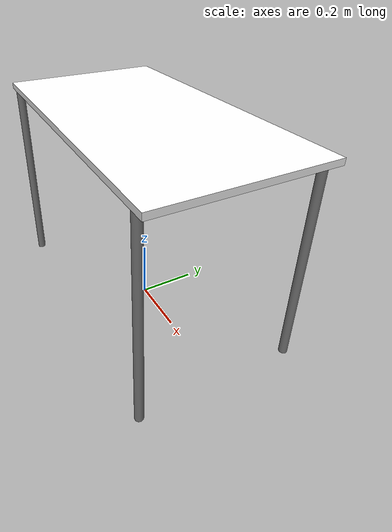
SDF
<sdf version="1.8">
    <model name="Table">
        <link name="link">
            <!-- Table Top Surface -->
            <collision name="surface">
                <pose>0 0 0.7 0 0 0</pose>
                <geometry>
                    <box>
                        <size>1.05 0.56 0.021</size>
                    </box>
                </geometry>
                <surface>
                    <friction>
                        <ode>
                            <mu>0.6</mu>
                            <mu2>0.6</mu2>
                        </ode>
                    </friction>
                </surface>
            </collision>
            <visual name="visual1">
                <pose>0 0 0.7 0 0 0</pose>
                <geometry>
                    <box>
                        <size>1.05 0.56 0.021</size>
                    </box>
                </geometry>
                <material>
                    <diffuse>1.0 1.0 1.0 1.0</diffuse>
                    <pbr>
                        <metal>
                            <albedo_map>https://fuel.gazebosim.org/1.0/openrobotics/models/table/4/files/Table_Diffuse.jpg</albedo_map>
                        </metal>
                    </pbr>
                </material>
            </visual>

            <!-- Front Left Leg -->
            <collision name="front_left_leg">
                <pose>0.476 0.266 0.35 0 0 0</pose>
                <geometry>
                    <cylinder>
                        <radius>0.014</radius>
                        <length>0.7</length>
                    </cylinder>
                </geometry>
            </collision>
            <visual name="front_left_leg">
                <pose>0.476 0.266 0.35 0 0 0</pose>
                <geometry>
                    <cylinder>
                        <radius>0.014</radius>
                        <length>0.7</length>
                    </cylinder>
                </geometry>
                <material>
                    <diffuse>0.5 0.5 0.5 1.0</diffuse>
                </material>
            </visual>

            <!-- Front Right Leg -->
            <collision name="front_right_leg">
                <pose>0.476 -0.266 0.35 0 0 0</pose>
                <geometry>
                    <cylinder>
                        <radius>0.014</radius>
                        <length>0.7</length>
                    </cylinder>
                </geometry>
            </collision>
            <visual name="front_right_leg">
                <pose>0.476 -0.266 0.35 0 0 0</pose>
                <geometry>
                    <cylinder>
                        <radius>0.014</radius>
                        <length>0.7</length>
                    </cylinder>
                </geometry>
                <material>
                    <diffuse>0.5 0.5 0.5 1.0</diffuse>
                </material>
            </visual>

            <!-- Back Right Leg -->
            <collision name="back_right_leg">
                <pose>-0.476 -0.266 0.35 0 0 0</pose>
                <geometry>
                    <cylinder>
                        <radius>0.014</radius>
                        <length>0.7</length>
                    </cylinder>
                </geometry>
            </collision>
            <visual name="back_right_leg">
                <pose>-0.476 -0.266 0.35 0 0 0</pose>
                <geometry>
                    <cylinder>
                        <radius>0.014</radius>
                        <length>0.7</length>
                    </cylinder>
                </geometry>
                <material>
                    <diffuse>0.5 0.5 0.5 1.0</diffuse>
                </material>
            </visual>

            <!-- Back Left Leg -->
            <collision name="back_left_leg">
                <pose>-0.476 0.266 0.35 0 0 0</pose>
                <geometry>
                    <cylinder>
                        <radius>0.014</radius>
                        <length>0.7</length>
                    </cylinder>
                </geometry>
            </collision>
            <visual name="back_left_leg">
                <pose>-0.476 0.266 0.35 0 0 0</pose>
                <geometry>
                    <cylinder>
                        <radius>0.014</radius>
                        <length>0.7</length>
                    </cylinder>
                </geometry>
                <material>
                    <diffuse>0.5 0.5 0.5 1.0</diffuse>
                </material>
            </visual>
        </link>
    </model>
</sdf>
